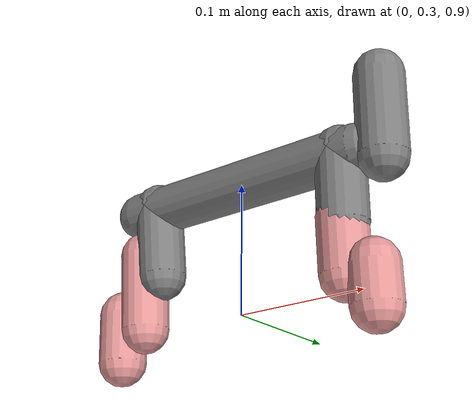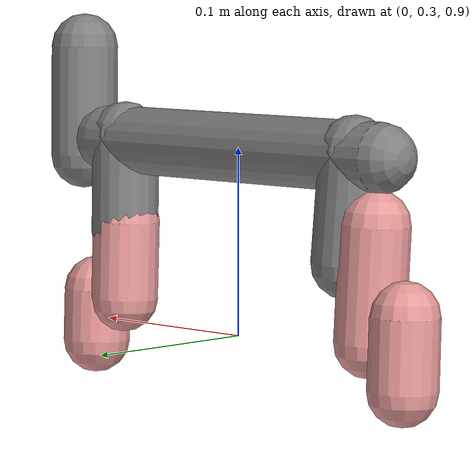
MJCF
<mujoco model="half-cheetah">
    <worldbody>
        <body name="torso" pos="0 0.3 1.0" euler="1.5708 0 0">
          <camera name="track" mode="trackcom" pos="0 -3 0.3" xyaxes="1 0 0 0 0 1"/>
          <joint armature="0" axis="1 0 0" damping="0" limited="false" name="rootx" pos="0 0 0" stiffness="0" type="slide"/>
          <joint armature="0" axis="0 0 1" damping="0" limited="false" name="rootz" pos="0 0 0" stiffness="0" type="slide"/>
          <joint armature="0" axis="0 1 0" damping="0" limited="false" name="rooty" pos="0 0 0" stiffness="0" type="hinge"/>
          <geom fromto="-.1 0 0 .1 0 0" name="torso" size="0.0184" type="capsule"/>
          <geom axisangle="0 1 0 .87" name="head" pos=".12 0 .02" size="0.0184 .03" type="capsule"/>
          <body name="bthigh" pos="-.1 0 0">
            <joint axis="0 1 0" damping="6" name="bthigh" pos="0 0 0" range="-.52 1.05" stiffness="240" type="hinge"/>
            <geom axisangle="0 1 0 -3.8" name="bthigh" pos=".02 0 -.026" size="0.0184 .029" type="capsule"/>
            <body name="bshin" pos=".032 0 -.05">
              <joint axis="0 1 0" damping="4.5" name="bshin" pos="0 0 0" range="-.785 .785" stiffness="180" type="hinge"/>
              <geom axisangle="0 1 0 -2.03" name="bshin" pos="-.028 0 -.014" rgba="0.9 0.6 0.6 1" size="0.0184 .03" type="capsule"/>
              <body name="bfoot" pos="-.056 0 -.028">
                <joint axis="0 1 0" damping="3" name="bfoot" pos="0 0 0" range="-.4 .785" stiffness="120" type="hinge"/>
                <geom axisangle="0 1 0 -.27" name="bfoot" pos=".006 0 -.0194" rgba="0.9 0.6 0.6 1" size="0.0184 .0188" type="capsule"/>
              </body>
            </body>
          </body>
          <body name="fthigh" pos=".1 0 0">
            <joint axis="0 1 0" damping="4.5" name="fthigh" pos="0 0 0" range="-1 .7" stiffness="180" type="hinge"/>
            <geom axisangle="0 1 0 .52" name="fthigh" pos="-.014 0 -.024" size="0.0184 .0266" type="capsule"/>
            <body name="fshin" pos="-.028 0 -.048">
              <joint axis="0 1 0" damping="3" name="fshin" pos="0 0 0" range="-1.2 .87" stiffness="120" type="hinge"/>
              <geom axisangle="0 1 0 -.6" name="fshin" pos=".013 0 -.018" rgba="0.9 0.6 0.6 1" size="0.0184 .0212" type="capsule"/>
              <body name="ffoot" pos=".026 0 -.036">
                <joint axis="0 1 0" damping="1.5" name="ffoot" pos="0 0 0" range="-.5 .5" stiffness="60" type="hinge"/>
                <geom axisangle="0 1 0 -.6" name="ffoot" pos=".009 0 -.014" rgba="0.9 0.6 0.6 1" size="0.0184 .014" type="capsule"/>
              </body>
            </body>
          </body>
        </body>
    </worldbody>

    <actuator>
        <motor gear="200" joint="bthigh" name="bthigh"/>
        <motor gear="200" joint="bshin" name="bshin"/>
        <motor gear="100" joint="bfoot" name="bfoot"/>
        <motor gear="200" joint="fthigh" name="fthigh"/>
        <motor gear="200" joint="fshin" name="fshin"/>
        <motor gear="100" joint="ffoot" name="ffoot"/>
    </actuator>

</mujoco>
